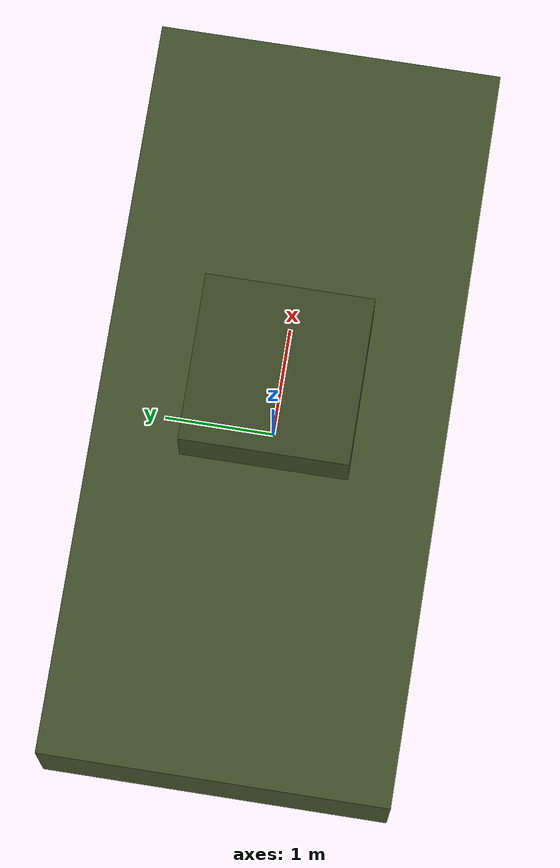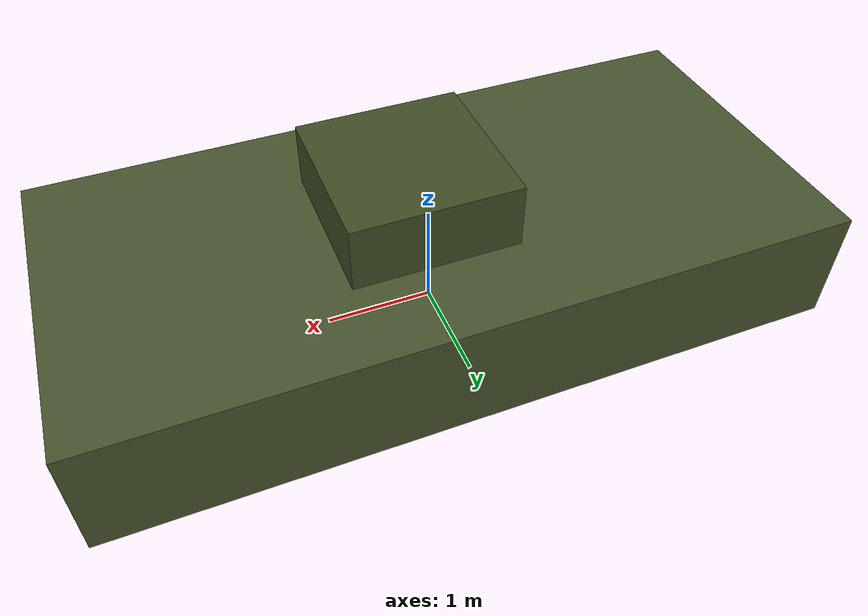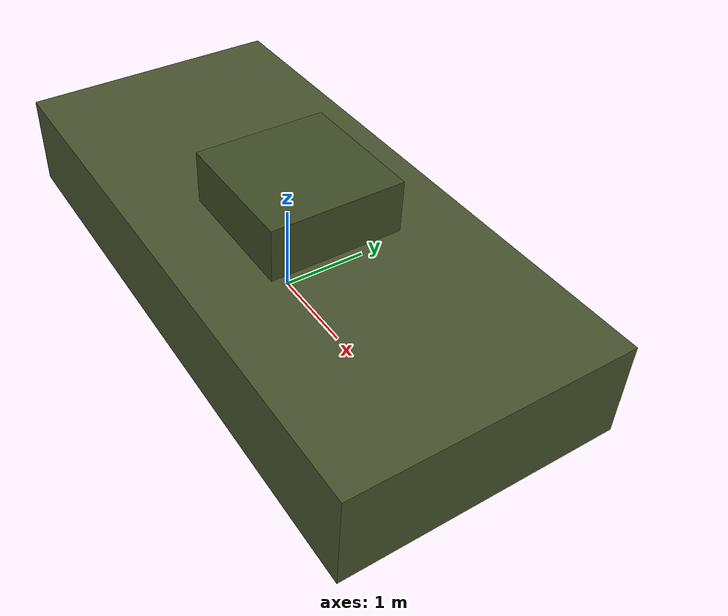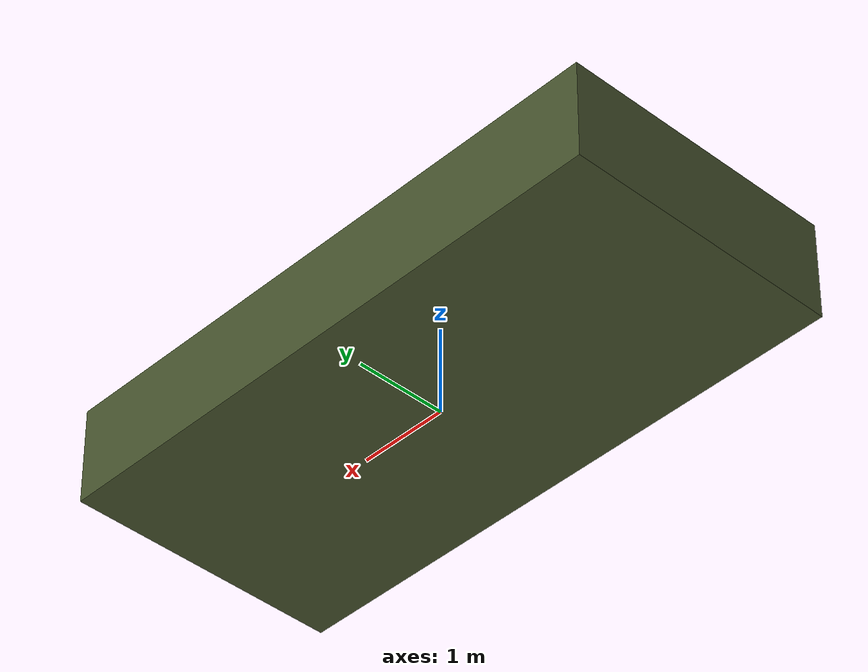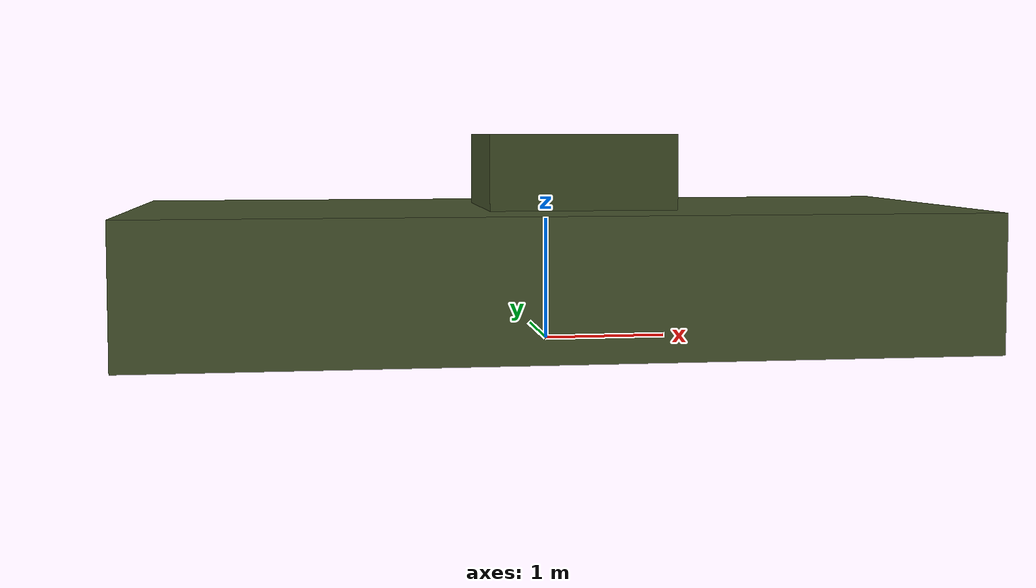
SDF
<?xml version="1.0" ?>
<sdf version="1.9">
  <model name="apc_bmp2">
    <static>true</static>
    <pose>0 0 0.55 0 0 0</pose>
    <link name="body">
      <!-- Hull: 6.7 x 3.1 x 1.1m -->
      <visual name="hull">
        <geometry><box><size>6.7 3.1 1.1</size></box></geometry>
        <material>
          <ambient>0.22 0.28 0.15 1</ambient>
          <diffuse>0.28 0.33 0.18 1</diffuse>
        </material>
      </visual>
      <!-- Small turret: 1.5 x 1.5 x 0.6m -->
      <visual name="turret">
        <pose>0.2 0 0.85 0 0 0</pose>
        <geometry><box><size>1.5 1.5 0.6</size></box></geometry>
        <material>
          <ambient>0.19 0.25 0.12 1</ambient>
          <diffuse>0.25 0.30 0.15 1</diffuse>
        </material>
      </visual>
      <collision name="collision">
        <geometry><box><size>6.7 3.1 1.1</size></box></geometry>
      </collision>
    </link>
  </model>
</sdf>
